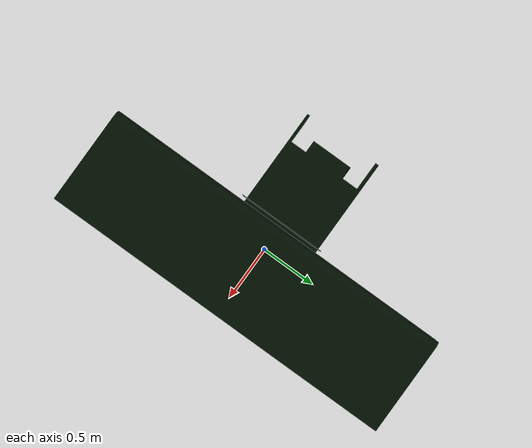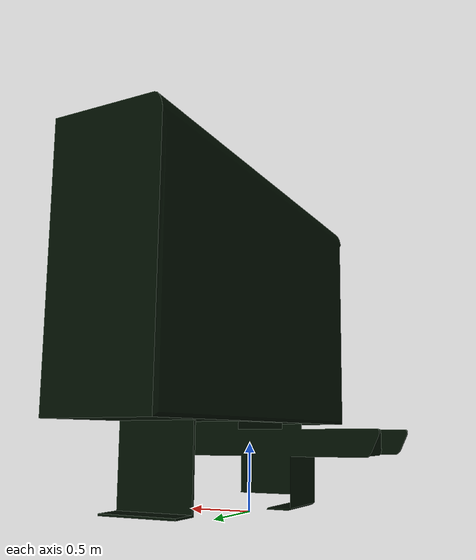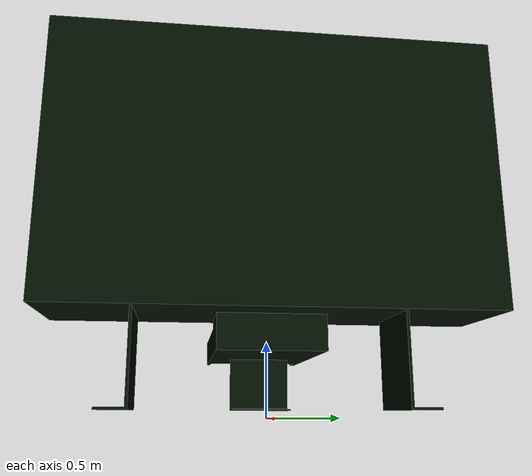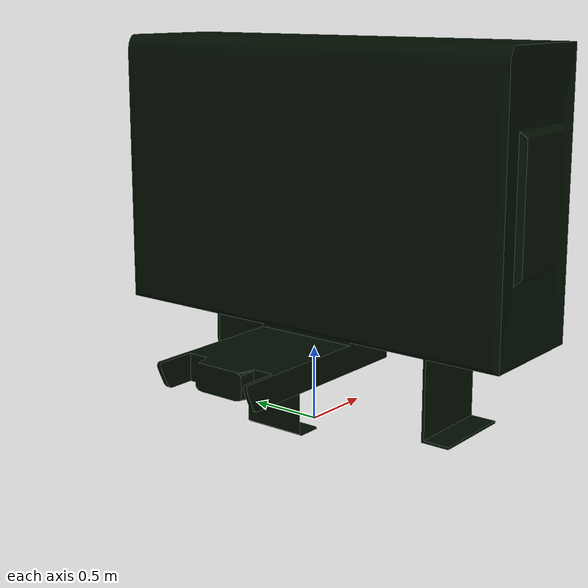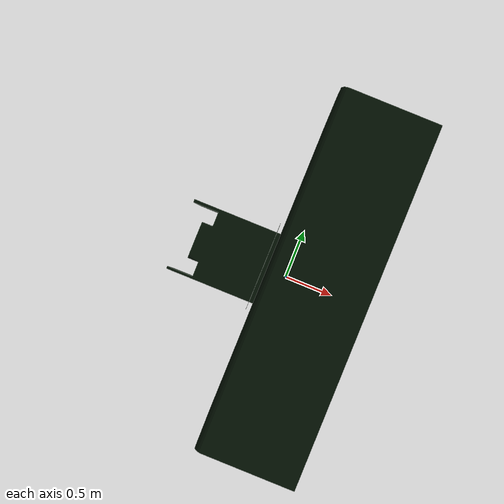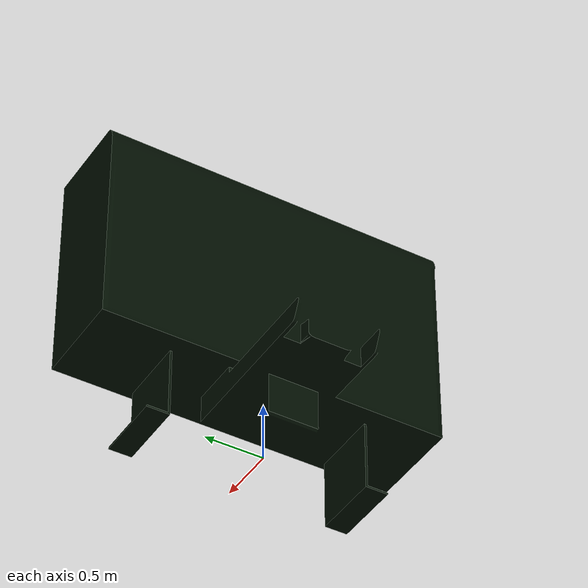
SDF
<?xml version='1.0'?>
<sdf version='1.6'>
  <model name='charging_station'>
    <static>true</static>
    <pose>0 0 0 0 0 0</pose>
    <!-- BASE_LINK FRAME -->
    <link name='charging_station_base_link'>
      <pose>0 0 0.05 0 0 -1.570796327</pose>
      <collision name='charging_station_collision'>
        <pose>0 0 0.3 0 0 -1.570796327</pose>
        <geometry>
          <box>
            <size>0.1 0.55 0.4</size>
            <scale>5 5 5</scale>

          </box>
        </geometry>
      </collision>
      <visual name='charging_station_visual'>
        <pose>0 0 0 0 0 0</pose>
        <geometry>
          <mesh>
            <scale>5 5 5</scale>
            <uri>meshes/charging_station.dae</uri>
          </mesh>
        </geometry>
        <material>
          <ambient>0.0 0.02 0.0 1.0</ambient>    <!-- Extremely Dark Ambient Color -->
          <diffuse>0.0 0.05 0.0 1.0</diffuse>    <!-- Extremely Dark Diffuse Color -->
          <specular>0.0 0.0 0.0 1.0</specular>
          <emissive>0.0 0.0 0.0 1.0</emissive>
        </material>
        <override_material>true</override_material>
      </visual>

    </link>
  </model>
</sdf>
